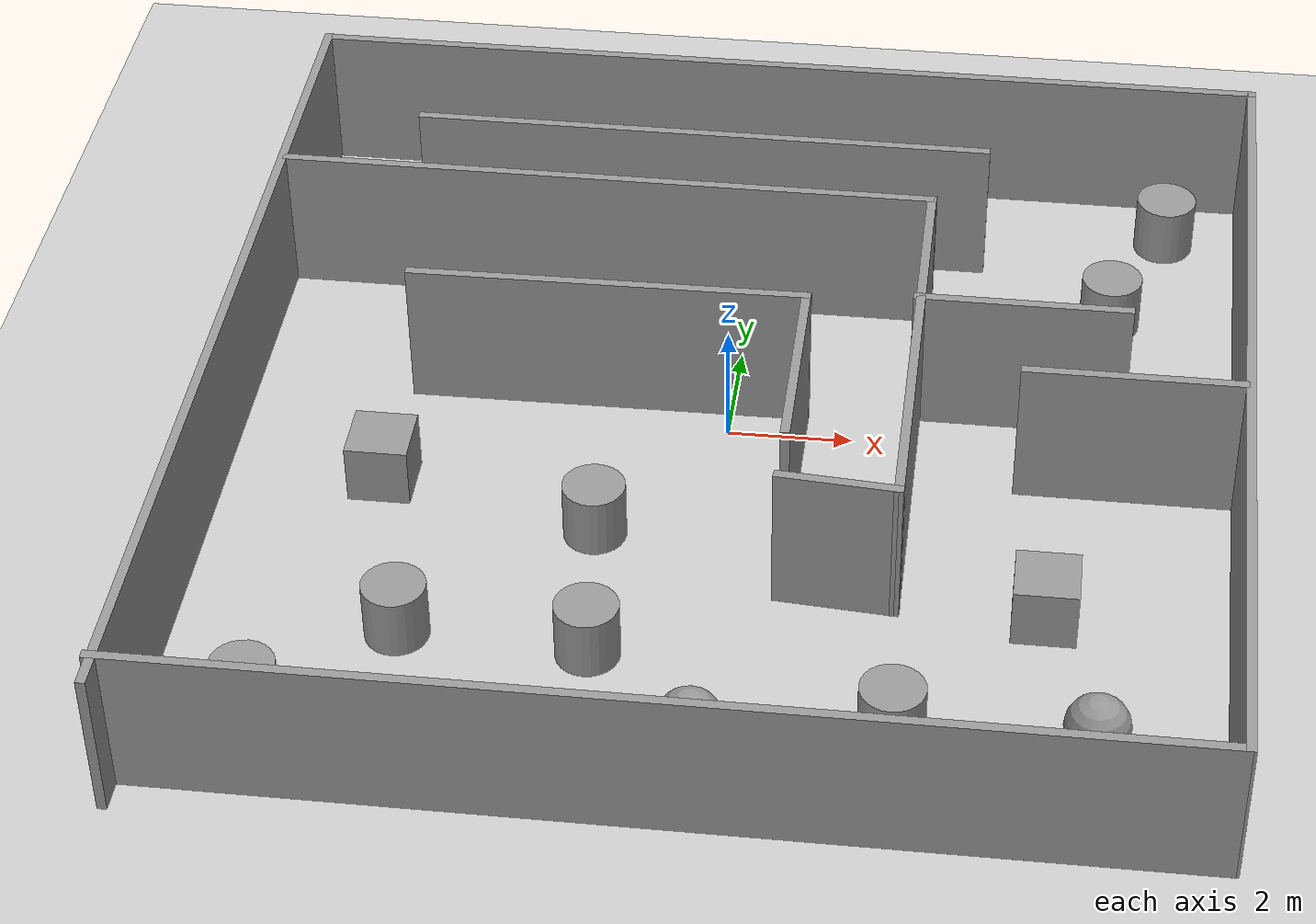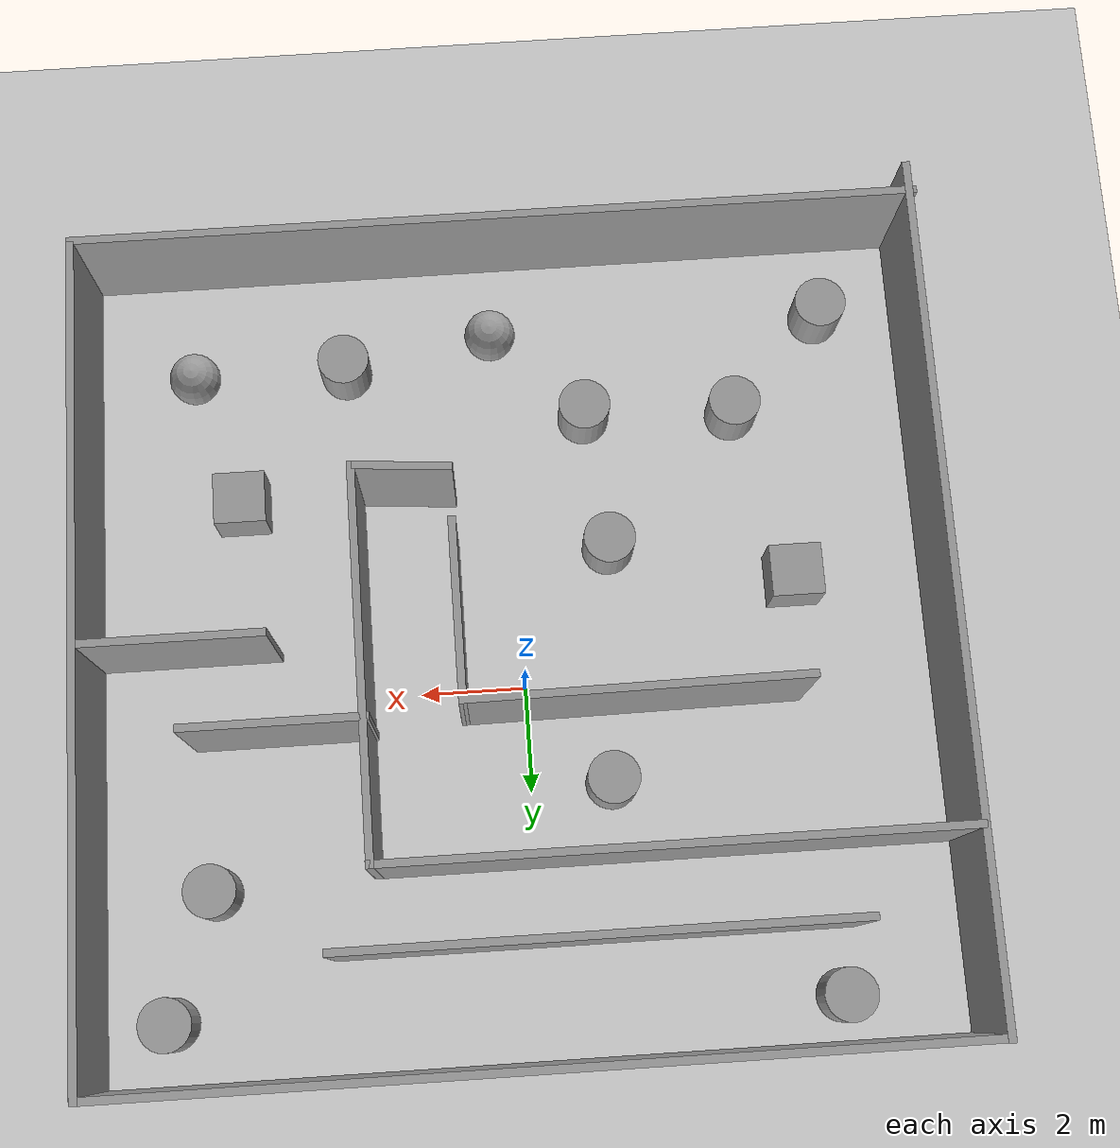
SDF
<sdf version="1.7">
 <world name="default">
  <plugin name="gazebo_ros_state" filename="libgazebo_ros_state.so"/>
  <light name="sun" type="directional">
   <pose>0 0 10 0 -0 0</pose>
   <diffuse>0.8 0.8 0.8 1</diffuse>
   <specular>0.2 0.2 0.2 1</specular>
   <attenuation>
    <range>1000</range>
    <constant>0.9</constant>
    <linear>0.01</linear>
    <quadratic>0.001</quadratic>
   </attenuation>
   <direction>-0.5 0.1 -0.9</direction>
   <spot><inner_angle>0</inner_angle><outer_angle>0</outer_angle><falloff>0</falloff></spot>
  </light>
  <model name="ground_plane">
   <static>1</static>
   <link name="link">
    <collision name="collision">
     <geometry><plane><normal>0 0 1</normal><size>100 100</size></plane></geometry>
     <surface>
      <contact><collide_bitmask>65535</collide_bitmask></contact>
      <friction><ode><mu>100</mu><mu2>50</mu2></ode></friction>
     </surface>
    </collision>
    <visual name="visual">
     <cast_shadows>0</cast_shadows>
     <geometry><plane><normal>0 0 1</normal><size>100 100</size></plane></geometry>
     <material>
      <script><uri>file://media/materials/scripts/gazebo.material</uri><name>Gazebo/Grey</name></script>
     </material>
    </visual>
   </link>
  </model>
  <gravity>0 0 -9.8</gravity>
  <magnetic_field>6e-06 2.3e-05 -4.2e-05</magnetic_field>
  <atmosphere type="adiabatic"/>
  <physics type="ode">
   <max_step_size>0.001</max_step_size>
   <real_time_factor>1</real_time_factor>
   <real_time_update_rate>1000</real_time_update_rate>
  </physics>
  <scene><ambient>0.4 0.4 0.4 1</ambient><background>0.7 0.7 0.7 1</background><shadows>1</shadows></scene>
  <audio><device>default</device></audio>
  <spherical_coordinates>
   <surface_model>EARTH_WGS84</surface_model>
   <latitude_deg>0</latitude_deg>
   <longitude_deg>0</longitude_deg>
   <elevation>0</elevation>
   <heading_deg>0</heading_deg>
  </spherical_coordinates>
  <model name="room">
   <pose>0.129395 -1.07761 0 0 -0 0</pose>
   <link name="Wall_10">
    <collision name="Wall_10_Collision">
     <geometry><box><size>16.25 0.15 2.5</size></box></geometry>
     <pose>0 0 1.25 0 -0 0</pose>
    </collision>
    <visual name="Wall_10_Visual">
     <pose>0 0 1.25 0 -0 0</pose>
     <geometry><box><size>16.25 0.15 2.5</size></box></geometry>
     <material>
      <script><uri>file://media/materials/scripts/gazebo.material</uri><name>Gazebo/Grey</name></script>
      <ambient>1 1 1 1</ambient>
     </material>
     <meta><layer>0</layer></meta>
    </visual>
    <pose>0.080956 8.16143 0 0 -0 0</pose>
   </link>
   <link name="Wall_11">
    <collision name="Wall_11_Collision">
     <geometry><box><size>15.9862 0.15 2.5</size></box></geometry>
     <pose>0 0 1.25 0 -0 0</pose>
    </collision>
    <visual name="Wall_11_Visual">
     <pose>0 0 1.25 0 -0 0</pose>
     <geometry><box><size>15.9862 0.15 2.5</size></box></geometry>
     <material>
      <script><uri>file://media/materials/scripts/gazebo.material</uri><name>Gazebo/Grey</name></script>
      <ambient>1 1 1 1</ambient>
     </material>
     <meta><layer>0</layer></meta>
    </visual>
    <pose>8.04962 0.243453 0 0 -0 -1.58107</pose>
   </link>
   <link name="Wall_5">
    <collision name="Wall_5_Collision">
     <geometry><box><size>16.25 0.15 2.5</size></box></geometry>
     <pose>0 0 1.25 0 -0 0</pose>
    </collision>
    <visual name="Wall_5_Visual">
     <pose>0 0 1.25 0 -0 0</pose>
     <geometry><box><size>16.25 0.15 2.5</size></box></geometry>
     <material>
      <script><uri>file://media/materials/scripts/gazebo.material</uri><name>Gazebo/Grey</name></script>
      <ambient>1 1 1 1</ambient>
     </material>
     <meta><layer>0</layer></meta>
    </visual>
    <pose>-0.08172 -7.67453 0 0 -0 3.14159</pose>
   </link>
   <link name="Wall_8">
    <collision name="Wall_8_Collision">
     <geometry><box><size>16.5 0.15 2.5</size></box></geometry>
     <pose>0 0 1.25 0 -0 0</pose>
    </collision>
    <visual name="Wall_8_Visual">
     <pose>0 0 1.25 0 -0 0</pose>
     <geometry><box><size>16.5 0.15 2.5</size></box></geometry>
     <material>
      <script><uri>file://media/materials/scripts/gazebo.material</uri><name>Gazebo/Grey</name></script>
      <ambient>1 1 1 1</ambient>
     </material>
     <meta><layer>0</layer></meta>
    </visual>
    <pose>-8.0623 0 0 0 -0 1.5708</pose>
   </link>
   <static>1</static>
  </model>
  <model name="Untitled">
   <pose>0.093322 0.441825 0 0 -0 0</pose>
   <link name="Wall_33">
    <collision name="Wall_33_Collision">
     <geometry><box><size>9.75 0.15 2.5</size></box></geometry>
     <pose>0 0 1.25 0 -0 0</pose>
    </collision>
    <visual name="Wall_33_Visual">
     <pose>0 0 1.25 0 -0 0</pose>
     <geometry><box><size>9.75 0.15 2.5</size></box></geometry>
     <material>
      <script><uri>file://media/materials/scripts/gazebo.material</uri><name>Gazebo/Grey</name></script>
      <ambient>1 1 1 1</ambient>
     </material>
     <meta><layer>0</layer></meta>
    </visual>
    <pose>-1.0954 4.41841 0 0 -0 0</pose>
   </link>
   <link name="Wall_36">
    <collision name="Wall_36_Collision">
     <geometry><box><size>6.53088 0.15 2.5</size></box></geometry>
     <pose>0 0 1.25 0 -0 0</pose>
    </collision>
    <visual name="Wall_36_Visual">
     <pose>0 0 1.25 0 -0 0</pose>
     <geometry><box><size>6.53088 0.15 2.5</size></box></geometry>
     <material>
      <script><uri>file://media/materials/scripts/gazebo.material</uri><name>Gazebo/Grey</name></script>
      <ambient>1 1 1 1</ambient>
     </material>
     <meta><layer>0</layer></meta>
    </visual>
    <pose>-2.1061 0.076628 0 0 -0 -3.132</pose>
   </link>
   <link name="Wall_39">
    <collision name="Wall_39_Collision">
     <geometry><box><size>1.96496 0.15 2.5</size></box></geometry>
     <pose>0 0 1.25 0 -0 0</pose>
    </collision>
    <visual name="Wall_39_Visual">
     <pose>0 0 1.25 0 -0 0</pose>
     <geometry><box><size>1.96496 0.15 2.5</size></box></geometry>
     <material>
      <script><uri>file://media/materials/scripts/gazebo.material</uri><name>Gazebo/Grey</name></script>
      <ambient>1 1 1 1</ambient>
     </material>
     <meta><layer>0</layer></meta>
    </visual>
    <pose>1.98899 -4.34312 0 0 -0 -0.076933</pose>
   </link>
   <link name="Wall_40">
    <collision name="Wall_40_Collision">
     <geometry><box><size>7.5 0.15 2.5</size></box></geometry>
     <pose>0 0 1.25 0 -0 0</pose>
    </collision>
    <visual name="Wall_40_Visual">
     <pose>0 0 1.25 0 -0 0</pose>
     <geometry><box><size>7.5 0.15 2.5</size></box></geometry>
     <material>
      <script><uri>file://media/materials/scripts/gazebo.material</uri><name>Gazebo/Grey</name></script>
      <ambient>1 1 1 1</ambient>
     </material>
     <meta><layer>0</layer></meta>
    </visual>
    <pose>2.89379 -0.737865 0 0 -0 1.5708</pose>
   </link>
   <link name="Wall_41">
    <collision name="Wall_41_Collision">
     <geometry><box><size>11.0302 0.15 2.5</size></box></geometry>
     <pose>0 0 1.25 0 -0 0</pose>
    </collision>
    <visual name="Wall_41_Visual">
     <pose>0 0 1.25 0 -0 0</pose>
     <geometry><box><size>11.0302 0.15 2.5</size></box></geometry>
     <material>
      <script><uri>file://media/materials/scripts/gazebo.material</uri><name>Gazebo/Grey</name></script>
      <ambient>1 1 1 1</ambient>
     </material>
     <meta><layer>0</layer></meta>
    </visual>
    <pose>-2.53877 2.93714 0 0 -0 3.14159</pose>
   </link>
   <link name="Wall_43">
    <collision name="Wall_43_Collision">
     <geometry><box><size>3.5 0.15 2.5</size></box></geometry>
     <pose>0 0 1.25 0 -0 0</pose>
    </collision>
    <visual name="Wall_43_Visual">
     <pose>0 0 1.25 0 -0 0</pose>
     <geometry><box><size>3.5 0.15 2.5</size></box></geometry>
     <material>
      <script><uri>file://media/materials/scripts/gazebo.material</uri><name>Gazebo/Grey</name></script>
      <ambient>1 1 1 1</ambient>
     </material>
     <meta><layer>0</layer></meta>
    </visual>
    <pose>4.52385 0.290412 0 0 -0 0</pose>
   </link>
   <link name="Wall_45">
    <collision name="Wall_45_Collision">
     <geometry><box><size>3.5 0.15 2.5</size></box></geometry>
     <pose>0 0 1.25 0 -0 0</pose>
    </collision>
    <visual name="Wall_45_Visual">
     <pose>0 0 1.25 0 -0 0</pose>
     <geometry><box><size>3.5 0.15 2.5</size></box></geometry>
     <material>
      <script><uri>file://media/materials/scripts/gazebo.material</uri><name>Gazebo/Grey</name></script>
      <ambient>1 1 1 1</ambient>
     </material>
     <meta><layer>0</layer></meta>
    </visual>
    <pose>6.30389 -1.36827 0 0 -0 0</pose>
   </link>
   <link name="Wall_48">
    <collision name="Wall_48_Collision">
     <geometry><box><size>3.5 0.15 2.5</size></box></geometry>
     <pose>0 0 1.25 0 -0 0</pose>
    </collision>
    <visual name="Wall_48_Visual">
     <pose>0 0 1.25 0 -0 0</pose>
     <geometry><box><size>3.5 0.15 2.5</size></box></geometry>
     <material>
      <script><uri>file://media/materials/scripts/gazebo.material</uri><name>Gazebo/Grey</name></script>
      <ambient>1 1 1 1</ambient>
     </material>
     <meta><layer>0</layer></meta>
    </visual>
    <pose>1.0842 -1.56778 0 0 -0 -1.5708</pose>
   </link>
   <static>1</static>
  </model>
  <model name="unit_cylinder">
   <pose>-1.80235 -2.68032 0.499992 -3e-06 3e-06 0</pose>
   <link name="link">
    <inertial>
     <mass>1</mass>
     <inertia><ixx>0.145833</ixx><ixy>0</ixy><ixz>0</ixz><iyy>0.145833</iyy><iyz>0</iyz><izz>0.125</izz></inertia>
    </inertial>
    <collision name="collision">
     <geometry><cylinder><radius>0.5</radius><length>1</length></cylinder></geometry>
    </collision>
    <visual name="visual">
     <geometry><cylinder><radius>0.5</radius><length>1</length></cylinder></geometry>
     <material>
      <script><name>Gazebo/Grey</name><uri>file://media/materials/scripts/gazebo.material</uri></script>
     </material>
    </visual>
   </link>
  </model>
  <model name="unit_cylinder_0">
   <pose>-4.44812 -5.26592 0.499998 3e-06 -3e-06 0</pose>
   <link name="link">
    <inertial>
     <mass>1</mass>
     <inertia><ixx>0.145833</ixx><ixy>0</ixy><ixz>0</ixz><iyy>0.145833</iyy><iyz>0</iyz><izz>0.125</izz></inertia>
    </inertial>
    <collision name="collision">
     <geometry><cylinder><radius>0.5</radius><length>1</length></cylinder></geometry>
    </collision>
    <visual name="visual">
     <geometry><cylinder><radius>0.5</radius><length>1</length></cylinder></geometry>
     <material>
      <script><name>Gazebo/Grey</name><uri>file://media/materials/scripts/gazebo.material</uri></script>
     </material>
    </visual>
   </link>
  </model>
  <model name="unit_box">
   <pose>-5.32238 -1.81273 0.499995 0 1e-05 0</pose>
   <link name="link">
    <inertial>
     <mass>1</mass>
     <inertia>
      <ixx>0.166667</ixx>
      <ixy>0</ixy>
      <ixz>0</ixz>
      <iyy>0.166667</iyy>
      <iyz>0</iyz>
      <izz>0.166667</izz>
     </inertia>
    </inertial>
    <collision name="collision"><geometry><box><size>1 1 1</size></box></geometry></collision>
    <visual name="visual">
     <geometry><box><size>1 1 1</size></box></geometry>
     <material>
      <script><name>Gazebo/Grey</name><uri>file://media/materials/scripts/gazebo.material</uri></script>
     </material>
    </visual>
   </link>
  </model>
  <model name="unit_sphere">
   <pose>6.1134 -6.56696 0.5 0 -0 0</pose>
   <link name="link">
    <inertial>
     <mass>1</mass>
     <inertia><ixx>0.1</ixx><ixy>0</ixy><ixz>0</ixz><iyy>0.1</iyy><iyz>0</iyz><izz>0.1</izz></inertia>
    </inertial>
    <collision name="collision"><geometry><sphere><radius>0.5</radius></sphere></geometry></collision>
    <visual name="visual">
     <geometry><sphere><radius>0.5</radius></sphere></geometry>
     <material>
      <script><name>Gazebo/Grey</name><uri>file://media/materials/scripts/gazebo.material</uri></script>
     </material>
    </visual>
   </link>
  </model>
  <model name="unit_sphere_0">
   <pose>0.234538 -7.09971 0.5 0 -0 0</pose>
   <link name="link">
    <inertial>
     <mass>1</mass>
     <inertia><ixx>0.1</ixx><ixy>0</ixy><ixz>0</ixz><iyy>0.1</iyy><iyz>0</iyz><izz>0.1</izz></inertia>
    </inertial>
    <collision name="collision"><geometry><sphere><radius>0.5</radius></sphere></geometry></collision>
    <visual name="visual">
     <geometry><sphere><radius>0.5</radius></sphere></geometry>
     <material>
      <script><name>Gazebo/Grey</name><uri>file://media/materials/scripts/gazebo.material</uri></script>
     </material>
    </visual>
   </link>
  </model>
  <model name="unit_box_0">
   <pose>5.2683 -3.93992 0.499995 -1e-05 -0 -0</pose>
   <link name="link">
    <inertial>
     <mass>1</mass>
     <inertia>
      <ixx>0.166667</ixx>
      <ixy>0</ixy>
      <ixz>0</ixz>
      <iyy>0.166667</iyy>
      <iyz>0</iyz>
      <izz>0.166667</izz>
     </inertia>
    </inertial>
    <collision name="collision"><geometry><box><size>1 1 1</size></box></geometry></collision>
    <visual name="visual">
     <geometry><box><size>1 1 1</size></box></geometry>
     <material>
      <script><name>Gazebo/Grey</name><uri>file://media/materials/scripts/gazebo.material</uri></script>
     </material>
    </visual>
   </link>
  </model>
  <model name="unit_cylinder_1">
   <pose>6.06443 3.54354 0.499998 3e-06 -4e-06 0</pose>
   <link name="link">
    <inertial>
     <mass>1</mass>
     <inertia><ixx>0.145833</ixx><ixy>0</ixy><ixz>0</ixz><iyy>0.145833</iyy><iyz>0</iyz><izz>0.125</izz></inertia>
    </inertial>
    <collision name="collision">
     <geometry><cylinder><radius>0.5</radius><length>1</length></cylinder></geometry>
    </collision>
    <visual name="visual">
     <geometry><cylinder><radius>0.5</radius><length>1</length></cylinder></geometry>
     <material>
      <script><name>Gazebo/Grey</name><uri>file://media/materials/scripts/gazebo.material</uri></script>
     </material>
    </visual>
   </link>
  </model>
  <model name="unit_cylinder_2">
   <pose>-6.31405 -7.18653 0.499998 3e-06 -4e-06 0</pose>
   <link name="link">
    <inertial>
     <mass>1</mass>
     <inertia><ixx>0.145833</ixx><ixy>0</ixy><ixz>0</ixz><iyy>0.145833</iyy><iyz>0</iyz><izz>0.125</izz></inertia>
    </inertial>
    <collision name="collision">
     <geometry><cylinder><radius>0.5</radius><length>1</length></cylinder></geometry>
    </collision>
    <visual name="visual">
     <geometry><cylinder><radius>0.5</radius><length>1</length></cylinder></geometry>
     <material>
      <script><name>Gazebo/Grey</name><uri>file://media/materials/scripts/gazebo.material</uri></script>
     </material>
    </visual>
   </link>
  </model>
  <model name="unit_cylinder_3">
   <pose>6.94665 5.89744 0.499992 -3e-06 -4e-06 -0</pose>
   <link name="link">
    <inertial>
     <mass>1</mass>
     <inertia><ixx>0.145833</ixx><ixy>0</ixy><ixz>0</ixz><iyy>0.145833</iyy><iyz>0</iyz><izz>0.125</izz></inertia>
    </inertial>
    <collision name="collision">
     <geometry><cylinder><radius>0.5</radius><length>1</length></cylinder></geometry>
    </collision>
    <visual name="visual">
     <geometry><cylinder><radius>0.5</radius><length>1</length></cylinder></geometry>
     <material>
      <script><name>Gazebo/Grey</name><uri>file://media/materials/scripts/gazebo.material</uri></script>
     </material>
    </visual>
   </link>
  </model>
  <model name="unit_cylinder_4">
   <pose>-1.51711 -5.38423 0.499993 -3e-06 -3e-06 0</pose>
   <link name="link">
    <inertial>
     <mass>1</mass>
     <inertia><ixx>0.145833</ixx><ixy>0</ixy><ixz>0</ixz><iyy>0.145833</iyy><iyz>0</iyz><izz>0.125</izz></inertia>
    </inertial>
    <collision name="collision">
     <geometry><cylinder><radius>0.5</radius><length>1</length></cylinder></geometry>
    </collision>
    <visual name="visual">
     <geometry><cylinder><radius>0.5</radius><length>1</length></cylinder></geometry>
     <material>
      <script><name>Gazebo/Grey</name><uri>file://media/materials/scripts/gazebo.material</uri></script>
     </material>
    </visual>
   </link>
  </model>
  <model name="unit_cylinder_5">
   <pose>-1.53186 1.93256 0.499997 3e-06 4e-06 -0</pose>
   <link name="link">
    <inertial>
     <mass>1</mass>
     <inertia><ixx>0.145833</ixx><ixy>0</ixy><ixz>0</ixz><iyy>0.145833</iyy><iyz>0</iyz><izz>0.125</izz></inertia>
    </inertial>
    <collision name="collision">
     <geometry><cylinder><radius>0.5</radius><length>1</length></cylinder></geometry>
    </collision>
    <visual name="visual">
     <geometry><cylinder><radius>0.5</radius><length>1</length></cylinder></geometry>
     <material>
      <script><name>Gazebo/Grey</name><uri>file://media/materials/scripts/gazebo.material</uri></script>
     </material>
    </visual>
   </link>
  </model>
  <model name="unit_cylinder_6">
   <pose>-5.5313 6.17249 0.499993 -3e-06 -4e-06 -0</pose>
   <link name="link">
    <inertial>
     <mass>1</mass>
     <inertia><ixx>0.145833</ixx><ixy>0</ixy><ixz>0</ixz><iyy>0.145833</iyy><iyz>0</iyz><izz>0.125</izz></inertia>
    </inertial>
    <collision name="collision">
     <geometry><cylinder><radius>0.5</radius><length>1</length></cylinder></geometry>
    </collision>
    <visual name="visual">
     <geometry><cylinder><radius>0.5</radius><length>1</length></cylinder></geometry>
     <material>
      <script><name>Gazebo/Grey</name><uri>file://media/materials/scripts/gazebo.material</uri></script>
     </material>
    </visual>
   </link>
  </model>
  <model name="unit_cylinder_7">
   <pose>3.13861 -6.61803 0.499997 3e-06 4e-06 -0</pose>
   <link name="link">
    <inertial>
     <mass>1</mass>
     <inertia><ixx>0.145833</ixx><ixy>0</ixy><ixz>0</ixz><iyy>0.145833</iyy><iyz>0</iyz><izz>0.125</izz></inertia>
    </inertial>
    <collision name="collision">
     <geometry><cylinder><radius>0.5</radius><length>1</length></cylinder></geometry>
    </collision>
    <visual name="visual">
     <geometry><cylinder><radius>0.5</radius><length>1</length></cylinder></geometry>
     <material>
      <script><name>Gazebo/Grey</name><uri>file://media/materials/scripts/gazebo.material</uri></script>
     </material>
    </visual>
   </link>
  </model>
 </world>
</sdf>
